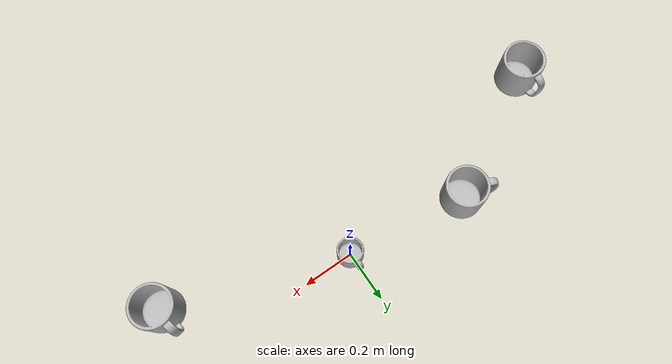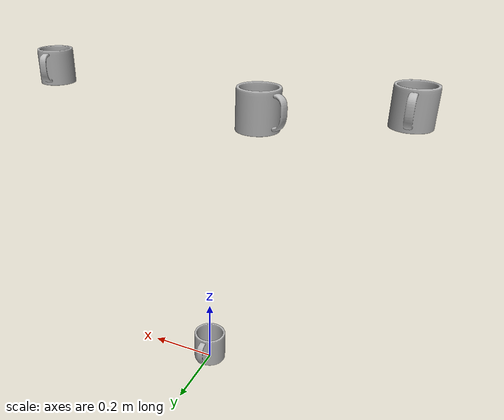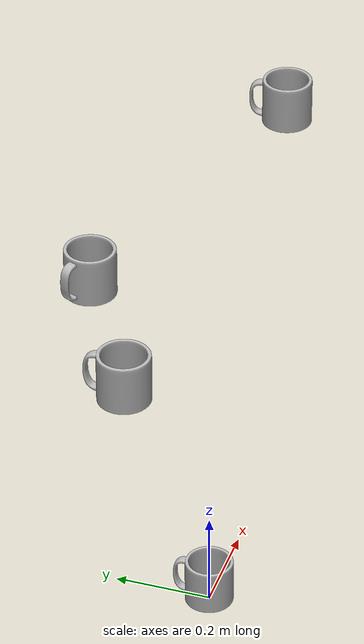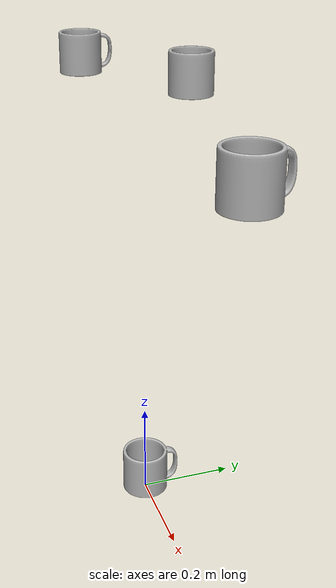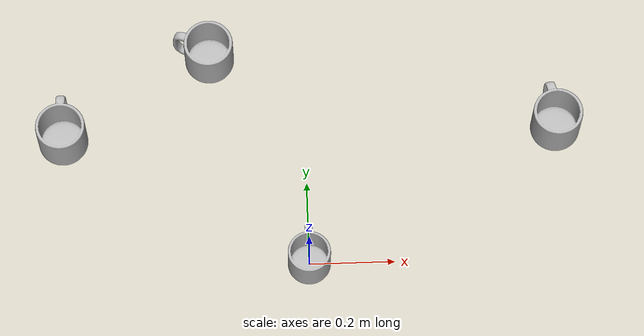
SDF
<?xml version="1.0" ?>

<sdf version="1.7">
  <world name="shapes">
    <scene>
      <ambient>1.0 1.0 1.0</ambient>
      <background>0.8 0.8 0.8</background>
    </scene>

    <light type="directional" name="sun">
      <cast_shadows>true</cast_shadows>
      <pose>0 0 10 0 0 0</pose>
      <diffuse>0.8 0.8 0.8 1</diffuse>
      <specular>0.2 0.2 0.2 1</specular>
      <attenuation>
        <range>1000</range>
        <constant>0.9</constant>
        <linear>0.01</linear>
        <quadratic>0.001</quadratic>
      </attenuation>
      <direction>-0.5 0.1 -0.9</direction>
    </light>

    <include>
        <name>a_large_kitchen_counter_with_marble_surface_21</name>
        <pose>0.0 0.0 0.0 0 0 0.0</pose>
        <uri>model://models/KitchenModularSet/model.sdf</uri>
    </include>

    <include>
        <name>some_printed_mug_preferably_with_a_superhero_logo_26</name>
        <pose>-0.20000000298023224 0.17000000178813934 0.8500000238418579 0 0 1.2000001668930054</pose>
        <uri>models/BatmanMug/model.sdf</uri>
    </include>

    <include>
        <name>serving_tray_86</name>
        <pose>0.5 0.0 0.8500000238418579 0 0 0.17453289031982422</pose>
        <uri>models/DeepBrownWoodenTray/model.sdf</uri>
    </include>

    <include>
        <name>water_bottle_103</name>
        <pose>-0.5 0.0 0.8500000238418579 0 0 0.0</pose>
        <uri>models/BeerBottleTemplate/model.sdf</uri>
    </include>

  </world>
</sdf>

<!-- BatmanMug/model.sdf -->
<sdf version="1.9">
  <model name="BatmanMug">
    <static>True</static>
    <link name="BatmanMug_link">
      <visual name="BatmanMug_visual">
        <geometry>
          <mesh>
            <uri>assets/visual.obj</uri>
          </mesh>
        </geometry>
      </visual>
    </link>
  </model>
</sdf>
